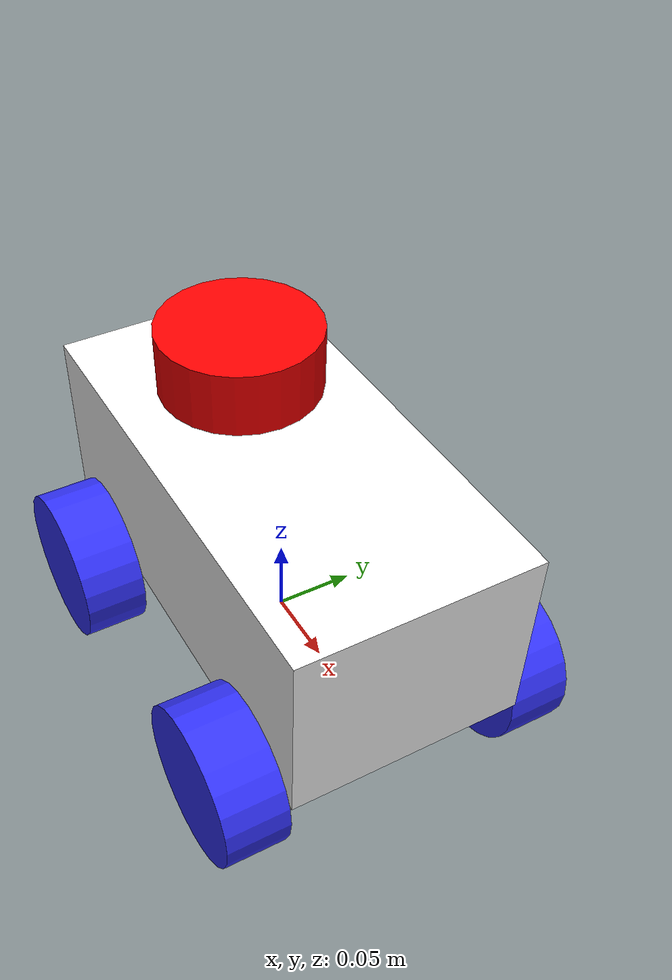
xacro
<?xml version="1.0"?>
<robot xmlns:xacro="http://www.ros.org/wiki/xacro"  name="robot">

    <xacro:include filename="robot_core.xacro" />
    <xacro:include filename="ros2_control.xacro" />
    <xacro:include filename="lidar.xacro" />
</robot>

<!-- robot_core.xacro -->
<robot xmlns:xacro="http://www.ros.org/wiki/xacro" >

    <xacro:include filename="inertial_macros.xacro"/>

    <material name="white">
        <color rgba="1 1 1 1"/>
    </material>

    <material name="orange">
        <color rgba="1 0.3 0.1 1"/>
    </material>

    <material name="blue">
        <color rgba="0.2 0.2 1 1"/>
    </material>

    <material name="black">
        <color rgba="0 0 0 1"/>
    </material>

    <material name="red">
        <color rgba="1 0 0 1"/>
    </material>

    <!-- BASE LINK -->
    <link name="base_link">
    </link>

    <!-- BASE_FOOTPRINT LINK -->

    <joint name="base_footprint_joint" type="fixed">
        <parent link="base_link"/>
        <child link="base_footprint"/>
        <origin xyz="0 0 0" rpy="0 0 0"/>
    </joint>

    <link name="base_footprint">
    </link>
    <!-- CHASSIS LINK -->

    <joint name="chassis_joint" type="fixed">
        <parent link="base_link"/>
        <child link="chassis"/>
        <origin xyz="-0.15 0 0"/>
    </joint>

    <link name="chassis">
        <visual>
            <origin xyz="0.15 0 0.075"/>
            <geometry>
                <box size="0.3 0.15 0.12"/>
            </geometry>
            <material name="white"/>
        </visual>
        <collision>
            <origin xyz="0.15 0 0.075"/>
            <geometry>
                <box size="0.3 0.15 0.12"/>
            </geometry>
        </collision>
        <xacro:inertial_box mass="0.5" x="0.3" y="0.15" z="0.11">
            <origin xyz="0.15 0 0.075" rpy="0 0 0"/>
        </xacro:inertial_box>
    </link>

    <gazebo reference="chassis">
        <material>Gazebo/White</material>
    </gazebo>

    <!-- LEFT BACK WHEEL LINK -->

    <joint name="left_back_wheel_joint" type="continuous">
        <parent link="base_link"/>
        <child link="left_back_wheel"/>
        <origin xyz="-0.1 0.095 0.0" rpy="-${pi/2} 0 0" />
        <axis xyz="0 0 1"/>
    </joint>

    <link name="left_back_wheel">
        <visual>
            <geometry>
                <cylinder radius="0.05" length="0.04"/>
            </geometry>
            <material name="blue"/>
        </visual>
        <collision>
            <geometry>
                <cylinder radius="0.05" length="0.04"/>
            </geometry>
        </collision>
        <xacro:inertial_cylinder mass="0.1" length="0.04" radius="0.05">
            <origin xyz="0 0 0" rpy="0 0 0"/>
        </xacro:inertial_cylinder>
    </link>

    <gazebo reference="left_back_wheel">
        <material>Gazebo/Blue</material>
    </gazebo>

    <!-- LEFT FRONT WHEEL LINK -->

    <joint name="left_front_wheel_joint" type="fixed">
        <parent link="base_link"/>
        <child link="left_front_wheel"/>
        <origin xyz="0.1 0.095 0.0" rpy="-${pi/2} 0 0"/>
        <axis xyz="0 0 1"/>
    </joint>

    <link name="left_front_wheel">
        <visual>
            <geometry>
                <cylinder radius="0.05" length="0.04"/>
            </geometry>
            <material name="blue"/>
        </visual>
        <collision>
            <geometry>
                <cylinder radius="0.05" length="0.04"/>
            </geometry>
        </collision>
        <xacro:inertial_cylinder mass="0.1" length="0.04" radius="0.05">
            <origin xyz="0 0 0" rpy="0 0 0"/>
        </xacro:inertial_cylinder>
    </link>

    <gazebo reference="left_front_wheel">
        <material>Gazebo/Blue</material>
        <mu1 value="0.001"/>
        <mu2 value="0.002"/>
    </gazebo>

    <!-- RIGHT BACK WHEEL LINK -->

    <joint name="right_back_wheel_joint" type="continuous">
        <parent link="base_link"/>
        <child link="right_back_wheel"/>
        <origin xyz="-0.1 -0.095 0.0" rpy="${pi/2} 0 0"/>
        <axis xyz="0 0 -1"/>
    </joint>

    <link name="right_back_wheel">
        <visual>
            <geometry>
                <cylinder radius="0.05" length="0.04"/>
            </geometry>
            <material name="blue"/>
        </visual>
        <collision>
            <geometry>
                <cylinder radius="0.05" length="0.04"/>
            </geometry>
        </collision>
        <xacro:inertial_cylinder mass="0.1" length="0.04" radius="0.05">
            <origin xyz="0 0 0" rpy="0 0 0"/>
        </xacro:inertial_cylinder>
    </link>

    <gazebo reference="right_back_wheel">
        <material>Gazebo/Blue</material>
    </gazebo>

    <!-- RIGHT FRONT WHEEL LINK -->

    <joint name="right_front_wheel_joint" type="fixed">
        <parent link="base_link"/>
        <child link="right_front_wheel"/>
        <origin xyz="0.1 -0.095 0.0" rpy="${pi/2} 0 0"/>
        <axis xyz="0 0 -1"/>
    </joint>

    <link name="right_front_wheel">
        <visual>
            <geometry>
                <cylinder radius="0.05" length="0.04"/>
            </geometry>
            <material name="blue"/>
        </visual>
        <collision>
            <geometry>
                <cylinder radius="0.05" length="0.04"/>
            </geometry>
        </collision>
        <xacro:inertial_cylinder mass="0.1" length="0.04" radius="0.05">
            <origin xyz="0 0 0" rpy="0 0 0"/>
        </xacro:inertial_cylinder>
    </link>

    <gazebo reference="right_front_wheel">
        <material>Gazebo/Blue</material>
        <mu1 value="0.001"/>
        <mu2 value="0.002"/>
    </gazebo>

</robot>

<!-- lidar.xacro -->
<robot xmlns:xacro="http://www.ros.org/wiki/xacro" >

    <joint name="laser_joint" type="fixed">
        <parent link="chassis"/>
        <child link="laser_frame"/>
        <origin xyz="0.1 0 0.165" rpy="0 0 0"/>
    </joint>

    <link name="laser_frame">
        <visual>
            <geometry>
                <cylinder radius="0.05" length="0.04"/>
            </geometry>
            <material name="red"/>
        </visual>
        <collision>
            <geometry>
                <cylinder radius="0.05" length="0.04"/>
            </geometry>
        </collision>
        <xacro:inertial_cylinder mass="0.1" length="0.04" radius="0.05">
            <origin xyz="0 0 0" rpy="0 0 0"/>
        </xacro:inertial_cylinder>
    </link>

    <gazebo reference="laser_frame">
        <material>Gazebo/Red</material>

        <sensor name="laser" type="ray">
            <pose> 0 0 0 0 0 0 </pose>
            <visualize>false</visualize>
            <update_rate>10</update_rate>
            <ray>
                <scan>
                    <horizontal>
                        <samples>360</samples>
                        <min_angle>-3.14</min_angle>
                        <max_angle>3.14</max_angle>
                    </horizontal>
                </scan>
                <range>
                    <min>0.3</min>
                    <max>10</max>
                </range>
            </ray>
            <plugin name="laser_controller" filename="libgazebo_ros_ray_sensor.so">
                <ros>
                    <argument>~/out:=scan</argument>
                </ros>
                <output_type>sensor_msgs/LaserScan</output_type>
                <frame_name>laser_frame</frame_name>
            </plugin>
        </sensor>
    </gazebo>

</robot>
